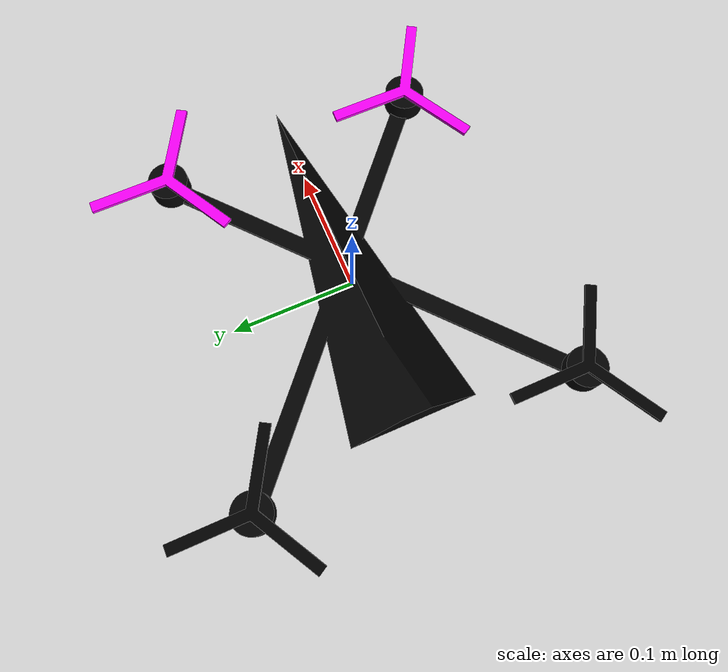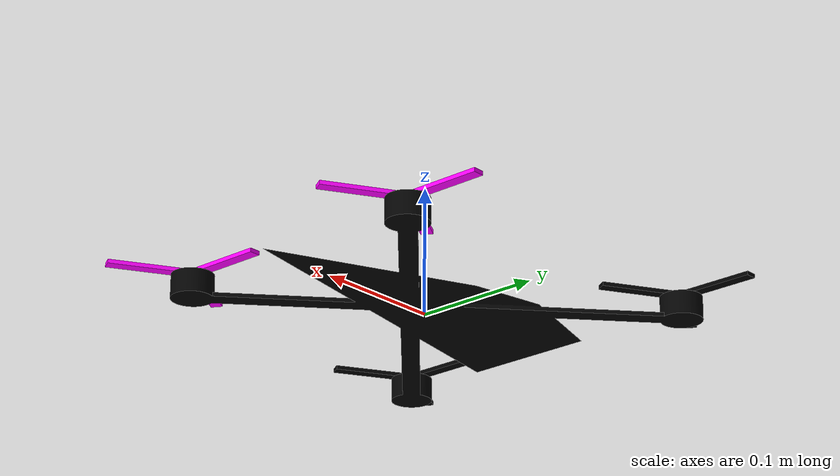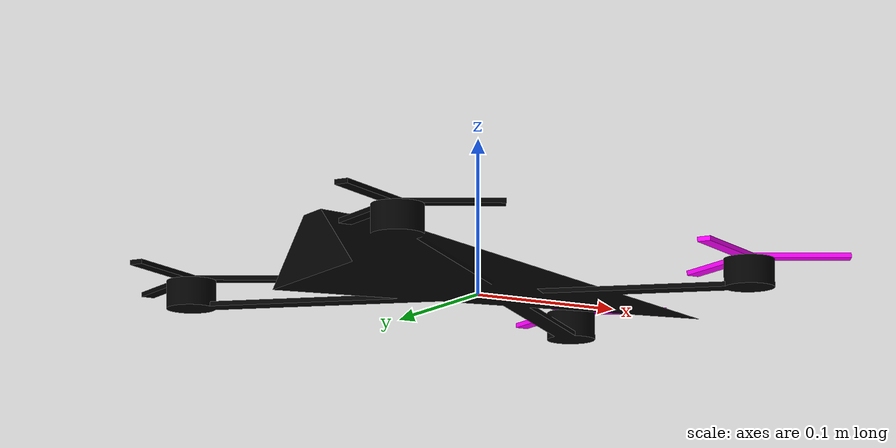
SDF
<?xml version='1.0'?>
<sdf version='1.9'>
  <model name='iris_with_standoffs'>
    <pose>0 0 0 0 0 0</pose>
    <link name='base_link'>
      <velocity_decay>
        <linear>0.0</linear>
        <angular>0.0</angular>
      </velocity_decay>
      <inertial>
        <pose>0 0 0 0 0 0</pose>
        <mass>1</mass>
        <inertia>
          <ixx>0.008</ixx>
          <ixy>0</ixy>
          <ixz>0</ixz>
          <iyy>0.015</iyy>
          <iyz>0</iyz>
          <izz>0.017</izz>
        </inertia>
      </inertial>
      <collision name='base_collision'>
        <pose>0 0 0.02 0 0 0</pose>
        <geometry>
          <box>
            <size>0.3 0.3 0.04</size>
          </box>
        </geometry>
        <surface>
          <contact>
            <ode>
              <max_vel>100.0</max_vel>
              <min_depth>0.001</min_depth>
            </ode>
          </contact>
          <friction>
            <ode>
              <mu>100000.0</mu>
              <mu2>100000.0</mu2>
            </ode>
          </friction>
        </surface>
      </collision>
      <visual name='base_visual'>
        <geometry>
          <mesh>
            <uri>package://ardupilot_gazebo/models/iris_with_standoffs/meshes/a2rl_quad.dae</uri>
          </mesh>
        </geometry>
        <material>
          <ambient>0.01 0.01 0.01</ambient>
          <diffuse>0.01 0.01 0.01</diffuse>
          <specular>1 1 1 1</specular>
        </material>
      </visual>

      <!-- Additional sensors -->
      <sensor name="air_pressure_sensor" type="air_pressure">
        <always_on>1</always_on>
        <update_rate>30</update_rate>
      </sensor>
      <sensor name="air_speed_sensor" type="air_speed">
        <always_on>1</always_on>
        <update_rate>30</update_rate>
      </sensor>
      <sensor name="altimeter_sensor" type="altimeter">
        <always_on>1</always_on>
        <update_rate>30</update_rate>
      </sensor>
      <sensor name="magnetometer_sensor" type="magnetometer">
        <always_on>1</always_on>
        <update_rate>30</update_rate>
      </sensor>
      <sensor name="navsat_sensor" type="navsat">
        <always_on>1</always_on>
        <update_rate>30</update_rate>
      </sensor>
      <sensor name="camera" type="camera">
        <pose degrees="true">0 0 0.05 0 -20 0</pose>
        <camera>
          <horizontal_fov>1.9</horizontal_fov>
          <image>
            <width>1280</width>
            <height>720</height>
          </image>
          <clip>
            <near>0.05</near>
            <far>15000</far>
          </clip>
        </camera>

        <always_on>1</always_on>
        <update_rate>30</update_rate>
        <visualize>0</visualize>

      </sensor>

    </link>
    <link name='imu_link'>
      <inertial>
        <pose>0 0 0 0 0 0</pose>
        <mass>0.15</mass>
        <inertia>
          <ixx>0.00001</ixx>
          <ixy>0</ixy>
          <ixz>0</ixz>
          <iyy>0.00002</iyy>
          <iyz>0</iyz>
          <izz>0.00002</izz>
        </inertia>
      </inertial>
      <sensor name="imu_sensor" type="imu">
        <pose degrees="true">0 0 0 180 0 0</pose>
        <always_on>1</always_on>
        <update_rate>1000.0</update_rate>
      </sensor>
    </link>
    <joint name='imu_joint' type='revolute'>
      <child>imu_link</child>
      <parent>base_link</parent>
      <axis>
        <xyz>0 0 1</xyz>
        <limit>
          <lower>0</lower>
          <upper>0</upper>
          <effort>0</effort>
          <velocity>0</velocity>
        </limit>
        <dynamics>
          <damping>1.0</damping>
        </dynamics>
      </axis>
    </joint>
    <link name='rotor_0'>
      <pose>0.134 -0.105 0.018 0 0 0</pose>
      <inertial>
        <pose>0 0 0 0 0 0</pose>
        <mass>0.015</mass>
        <inertia>
          <ixx>9.75e-06</ixx>
          <ixy>0</ixy>
          <ixz>0</ixz>
          <iyy>0.000166704</iyy>
          <iyz>0</iyz>
          <izz>0.000167604</izz>
        </inertia>
      </inertial>
      <collision name='rotor_0_collision'>
        <pose>0 0 0 0 0 0</pose>
        <geometry>
          <cylinder>
            <length>0.005</length>
            <radius>0.064</radius>
          </cylinder>
        </geometry>
        <surface>
          <contact>
            <ode/>
          </contact>
          <friction>
            <ode/>
          </friction>
        </surface>
      </collision>
      <visual name='rotor_0_visual'>
        <pose>0 0 0 0 0 0</pose>
        <geometry>
          <mesh>
            <scale>1 1 1</scale>
            <uri>package://ardupilot_gazebo/models/iris_with_standoffs/meshes/triblade.dae</uri>
          </mesh>
        </geometry>
        <material>
          <ambient>1 0 1</ambient>
          <diffuse>1 0 1</diffuse>
          <specular>1 1 1 1</specular>
        </material>
      </visual>
      <gravity>1</gravity>
      <velocity_decay/>
      <self_collide>0</self_collide>
    </link>
    <joint name='rotor_0_joint' type='revolute'>
      <child>rotor_0</child>
      <parent>base_link</parent>
      <axis>
        <xyz>0 0 1</xyz>
        <limit>
          <lower>-1e+16</lower>
          <upper>1e+16</upper>
        </limit>
        <dynamics>
          <damping>0.004</damping>
        </dynamics>
      </axis>
      <physics>
        <ode>
          <implicit_spring_damper>1</implicit_spring_damper>
        </ode>
      </physics>
    </joint>
    <link name='rotor_1'>
      <pose>-0.134 0.134 0.018 0 0 0</pose>
      <inertial>
        <pose>0 0 0 0 0 0</pose>
        <mass>0.015</mass>
        <inertia>
          <ixx>9.75e-06</ixx>
          <ixy>0</ixy>
          <ixz>0</ixz>
          <iyy>0.000166704</iyy>
          <iyz>0</iyz>
          <izz>0.000167604</izz>
        </inertia>
      </inertial>
      <collision name='rotor_1_collision'>
        <pose>0 0 0 0 0 0</pose>
        <geometry>
          <cylinder>
            <length>0.005</length>
            <radius>0.064</radius>
          </cylinder>
        </geometry>
        <surface>
          <contact>
            <ode/>
          </contact>
          <friction>
            <ode/>
          </friction>
        </surface>
      </collision>
      <visual name='rotor_1_visual'>
        <pose>0 0 0 0 0 0</pose>
        <geometry>
          <mesh>
            <scale>1 1 1</scale>
            <uri>package://ardupilot_gazebo/models/iris_with_standoffs/meshes/triblade.dae</uri>
          </mesh>
        </geometry>
        <material>
          <ambient>0 0 0</ambient>
          <diffuse>0 0 0</diffuse>
          <specular>1 1 1 1</specular>
        </material>
      </visual>
      <gravity>1</gravity>
      <velocity_decay/>
      <self_collide>0</self_collide>
    </link>
    <joint name='rotor_1_joint' type='revolute'>
      <child>rotor_1</child>
      <parent>base_link</parent>
      <axis>
        <xyz>0 0 1</xyz>
        <limit>
          <lower>-1e+16</lower>
          <upper>1e+16</upper>
        </limit>
        <dynamics>
          <damping>0.004</damping>
        </dynamics>
      </axis>
      <physics>
        <ode>
          <implicit_spring_damper>1</implicit_spring_damper>
        </ode>
      </physics>
    </joint>
    <link name='rotor_2'>
      <pose>0.134 0.105 0.018 0 0 0</pose>
      <inertial>
        <pose>0 0 0 0 0 0</pose>
        <mass>0.015</mass>
        <inertia>
          <ixx>9.75e-06</ixx>
          <ixy>0</ixy>
          <ixz>0</ixz>
          <iyy>0.000166704</iyy>
          <iyz>0</iyz>
          <izz>0.000167604</izz>
        </inertia>
      </inertial>
      <collision name='rotor_2_collision'>
        <pose>0 0 0 0 0 0</pose>
        <geometry>
          <cylinder>
            <length>0.005</length>
            <radius>0.064</radius>
          </cylinder>
        </geometry>
        <surface>
          <contact>
            <ode/>
          </contact>
          <friction>
            <ode/>
          </friction>
        </surface>
      </collision>
      <visual name='rotor_2_visual'>
        <pose>0 0 0 0 0 0</pose>
        <geometry>
          <mesh>
            <scale>1 1 1</scale>
            <uri>package://ardupilot_gazebo/models/iris_with_standoffs/meshes/triblade.dae</uri>
          </mesh>
        </geometry>
        <material>
          <ambient>1 0 1</ambient>
          <diffuse>1 0 1</diffuse>
          <specular>1 1 1 1</specular>
        </material>
      </visual>
      <gravity>1</gravity>
      <velocity_decay/>
      <self_collide>0</self_collide>
    </link>
    <joint name='rotor_2_joint' type='revolute'>
      <child>rotor_2</child>
      <parent>base_link</parent>
      <axis>
        <xyz>0 0 1</xyz>
        <limit>
          <lower>-1e+16</lower>
          <upper>1e+16</upper>
        </limit>
        <dynamics>
          <damping>0.004</damping>
        </dynamics>
      </axis>
      <physics>
        <ode>
          <implicit_spring_damper>1</implicit_spring_damper>
        </ode>
      </physics>
    </joint>
    <link name='rotor_3'>
      <pose>-0.134 -0.134 0.018 0 0 0</pose>
      <inertial>
        <pose>0 0 0 0 0 0</pose>
        <mass>0.015</mass>
        <inertia>
          <ixx>9.75e-06</ixx>
          <ixy>0</ixy>
          <ixz>0</ixz>
          <iyy>0.000166704</iyy>
          <iyz>0</iyz>
          <izz>0.000167604</izz>
        </inertia>
      </inertial>
      <collision name='rotor_3_collision'>
        <pose>0 0 0 0 0 0</pose>
        <geometry>
          <cylinder>
            <length>0.005</length>
            <radius>0.064</radius>
          </cylinder>
        </geometry>
        <surface>
          <contact>
            <ode/>
          </contact>
          <friction>
            <ode/>
          </friction>
        </surface>
      </collision>
      <visual name='rotor_3_visual'>
        <pose>0 0 0 0 0 0</pose>
        <geometry>
          <mesh>
            <scale>1 1 1</scale>
            <uri>package://ardupilot_gazebo/models/iris_with_standoffs/meshes/triblade.dae</uri>
          </mesh>
        </geometry>
        <material>
          <ambient>0 0 0</ambient>
          <diffuse>0 0 0</diffuse>
          <specular>1 1 1 1</specular>
        </material>
      </visual>
      <gravity>1</gravity>
      <velocity_decay/>
      <self_collide>0</self_collide>
    </link>
    <joint name='rotor_3_joint' type='revolute'>
      <child>rotor_3</child>
      <parent>base_link</parent>
      <axis>
        <xyz>0 0 1</xyz>
        <limit>
          <lower>-1e+16</lower>
          <upper>1e+16</upper>
        </limit>
        <dynamics>
          <damping>0.004</damping>
        </dynamics>
      </axis>
      <physics>
        <ode>
          <implicit_spring_damper>1</implicit_spring_damper>
        </ode>
      </physics>
    </joint>
  </model>
</sdf>
